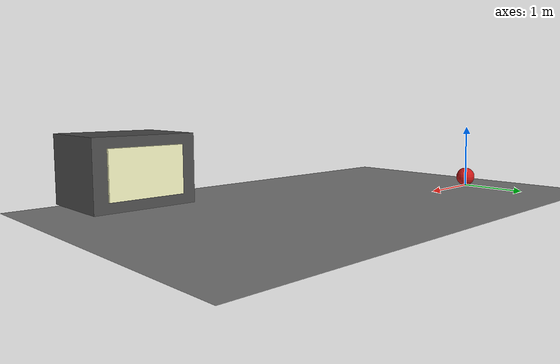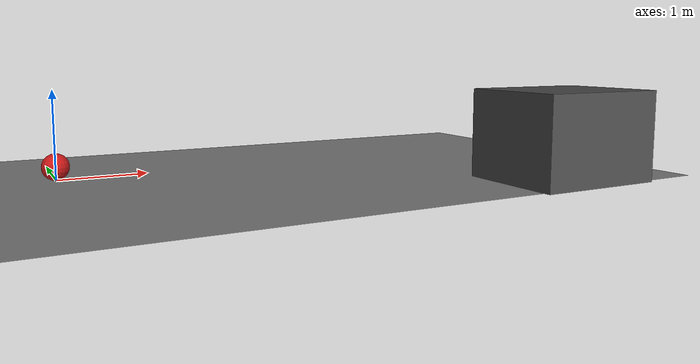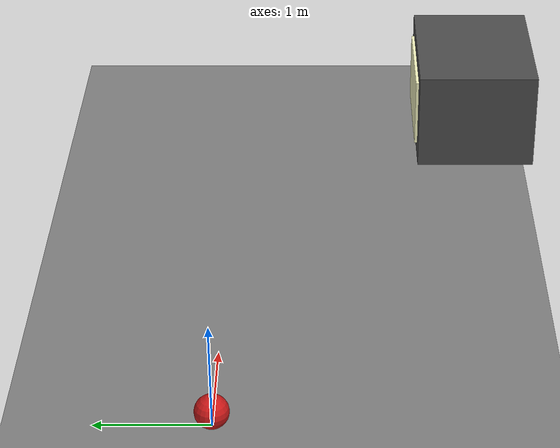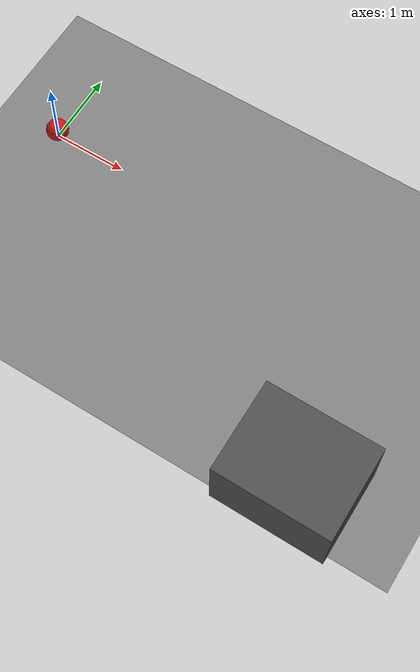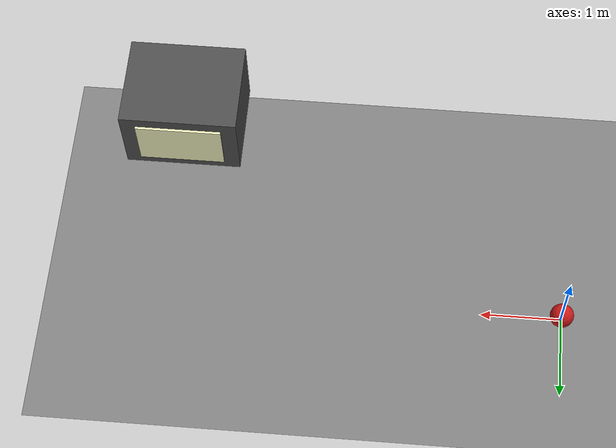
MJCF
<mujoco model="occlusion_corridor_moving">
  <option timestep="0.002" gravity="0 0 -9.81"/>
  <visual>
    <global offwidth="1280" offheight="720"/>
  </visual>

  <default>
    <geom friction="0.6 0.005 0.03" solref="0.01 1"/>
  </default>

  <worldbody>
    <light diffuse="0.8 0.8 0.8" pos="4 0 4" dir="0 0 -1"/>

    <geom name="floor" type="plane" size="9 3 0.1" pos="6 0 0" rgba="0.5 0.5 0.5 1"
          contype="1" conaffinity="6"/>

    <!-- Ball MUST stay body index 0 -- same invariant as every other scene
         in this repo (detect/statistics.py's obj=0 default etc). -->
    <body name="ball" pos="0 0 0.15">
      <freejoint/>
      <geom name="ball_geom" type="sphere" size="0.15" mass="0.5" rgba="0.8 0.1 0.1 1"
            condim="6" contype="2" conaffinity="1"/>
    </body>

    <body name="occluder" pos="5 -2.5 0.5" gravcomp="1">
      <freejoint/>
      <geom name="occluder_geom" type="box" size="0.75 0.6 0.5"
            rgba="0.3 0.3 0.3 1" contype="0" conaffinity="0"/>
      <geom name="occluder_opening" type="box" size="0.55 0.02 0.35" pos="0 0.61 0"
            contype="0" conaffinity="0" rgba="0.95 0.95 0.75 1"/>
    </body>
  </worldbody>

  <keyframe>
    <key name="push" qpos="0 0 0.15 1 0 0 0   5 -2.5 0.5 1 0 0 0"
                     qvel="4.3 0 0 0 0 0      0 0.7 0 0 0 0"/>
  </keyframe>
</mujoco>
